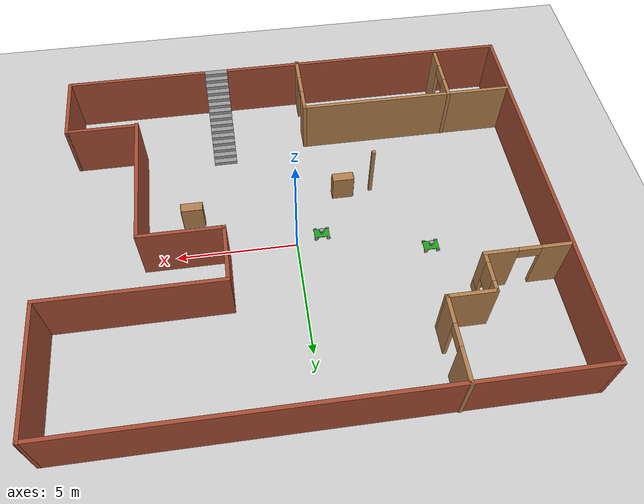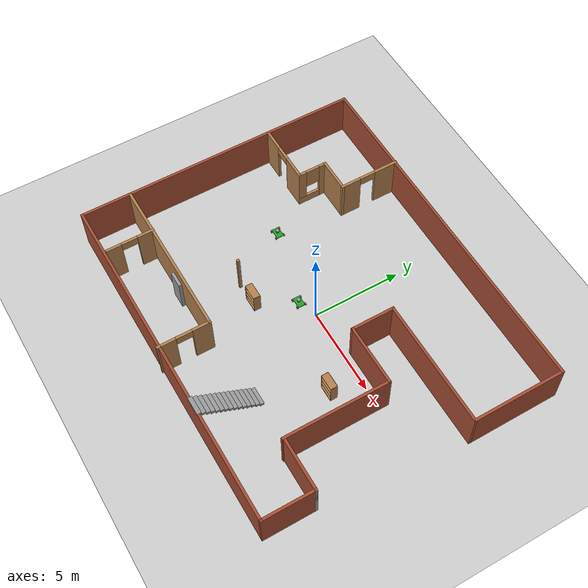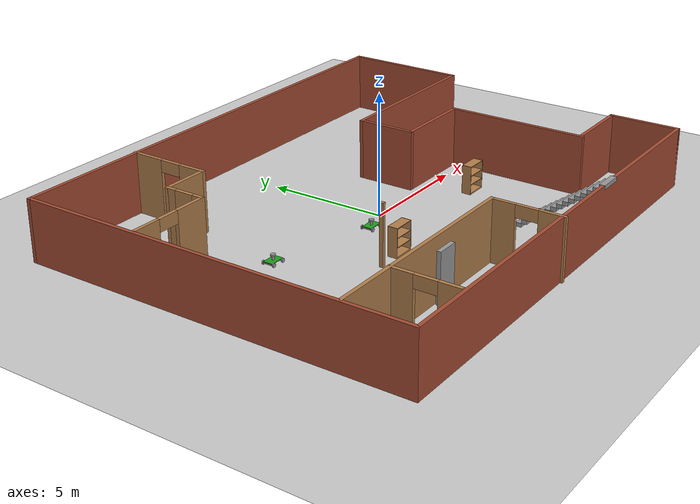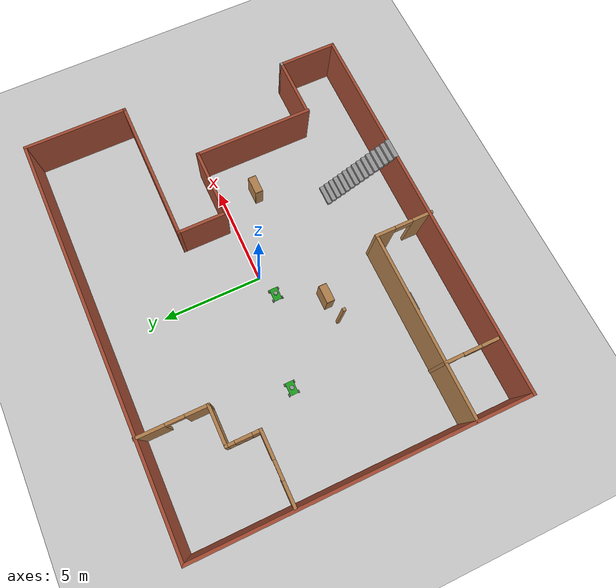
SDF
<sdf version="1.7">
 <world name="KoWorld">
  <light name="sun" type="directional">
   <pose>0 0 10 0 -0 0</pose>
   <diffuse>0.8 0.8 0.8 1</diffuse>
   <specular>0.2 0.2 0.2 1</specular>
   <attenuation>
    <range>1000</range>
    <constant>0.9</constant>
    <linear>0.01</linear>
    <quadratic>0.001</quadratic>
   </attenuation>
   <direction>-0.5 0.1 -0.9</direction>
   <spot><inner_angle>0</inner_angle><outer_angle>0</outer_angle><falloff>0</falloff></spot>
  </light>
  <model name="ground_plane">
   <static>1</static>
   <link name="link">
    <collision name="collision">
     <geometry><plane><normal>0 0 1</normal><size>100 100</size></plane></geometry>
     <surface>
      <contact><collide_bitmask>65535</collide_bitmask></contact>
      <friction><ode><mu>100</mu><mu2>50</mu2></ode></friction>
     </surface>
    </collision>
    <visual name="visual">
     <cast_shadows>0</cast_shadows>
     <geometry><plane><normal>0 0 1</normal><size>100 100</size></plane></geometry>
     <material>
      <script><uri>file://media/materials/scripts/gazebo.material</uri><name>Gazebo/Grey</name></script>
     </material>
    </visual>
   </link>
  </model>
  <gravity>0 0 -9.8</gravity>
  <magnetic_field>6e-06 2.3e-05 -4.2e-05</magnetic_field>
  <atmosphere type="adiabatic"/>
  <physics type="ode">
   <max_step_size>0.001</max_step_size>
   <real_time_factor>1</real_time_factor>
   <real_time_update_rate>1000</real_time_update_rate>
  </physics>
  <scene><ambient>0.4 0.4 0.4 1</ambient><background>0.7 0.7 0.7 1</background><shadows>1</shadows></scene>
  <spherical_coordinates>
   <surface_model>EARTH_WGS84</surface_model>
   <latitude_deg>0</latitude_deg>
   <longitude_deg>0</longitude_deg>
   <elevation>0</elevation>
   <heading_deg>0</heading_deg>
  </spherical_coordinates>
  <model name="KoLabHouse">
   <pose>-0.118384 -0.205877 0 0 -0 0</pose>
   <link name="Door_3">
    <collision name="Door_3_Collision">
     <geometry><box><size>0.9 0.17 2</size></box></geometry>
     <pose>0 0 1 0 -0 0</pose>
    </collision>
    <visual name="Door_3_Visual">
     <pose>0 0 1 0 -0 0</pose>
     <geometry><box><size>0.9 0.17 2</size></box></geometry>
     <material>
      <script><uri>file://media/materials/scripts/gazebo.material</uri><name>Gazebo/Grey</name></script>
     </material>
    </visual>
    <pose>-4.31656 -5.45643 0 0 -0 0</pose>
   </link>
   <link name="Stairs_0">
    <visual name="Stairs_0_Visual_0">
     <pose>2.76269 -4.71817 0.083333 0 -0 0</pose>
     <geometry><box><size>1 0.233333 0.166667</size></box></geometry>
     <material>
      <script><uri>file://media/materials/scripts/gazebo.material</uri><name>Gazebo/Grey</name></script>
      <ambient>1 1 1 1</ambient>
     </material>
     <meta><layer>0</layer></meta>
    </visual>
    <collision name="Stairs_0_Collision_0">
     <geometry><box><size>1 0.233333 0.166667</size></box></geometry>
     <pose>2.76269 -4.71817 0.083333 0 -0 0</pose>
    </collision>
    <visual name="Stairs_0_Visual_1">
     <pose>2.76269 -4.95151 0.25 0 -0 0</pose>
     <geometry><box><size>1 0.233333 0.166667</size></box></geometry>
     <material>
      <script><uri>file://media/materials/scripts/gazebo.material</uri><name>Gazebo/Grey</name></script>
      <ambient>1 1 1 1</ambient>
     </material>
     <meta><layer>0</layer></meta>
    </visual>
    <collision name="Stairs_0_Collision_1">
     <geometry><box><size>1 0.233333 0.166667</size></box></geometry>
     <pose>2.76269 -4.95151 0.25 0 -0 0</pose>
    </collision>
    <visual name="Stairs_0_Visual_2">
     <pose>2.76269 -5.18484 0.416667 0 -0 0</pose>
     <geometry><box><size>1 0.233333 0.166667</size></box></geometry>
     <material>
      <script><uri>file://media/materials/scripts/gazebo.material</uri><name>Gazebo/Grey</name></script>
      <ambient>1 1 1 1</ambient>
     </material>
     <meta><layer>0</layer></meta>
    </visual>
    <collision name="Stairs_0_Collision_2">
     <geometry><box><size>1 0.233333 0.166667</size></box></geometry>
     <pose>2.76269 -5.18484 0.416667 0 -0 0</pose>
    </collision>
    <visual name="Stairs_0_Visual_3">
     <pose>2.76269 -5.41817 0.583333 0 -0 0</pose>
     <geometry><box><size>1 0.233333 0.166667</size></box></geometry>
     <material>
      <script><uri>file://media/materials/scripts/gazebo.material</uri><name>Gazebo/Grey</name></script>
      <ambient>1 1 1 1</ambient>
     </material>
     <meta><layer>0</layer></meta>
    </visual>
    <collision name="Stairs_0_Collision_3">
     <geometry><box><size>1 0.233333 0.166667</size></box></geometry>
     <pose>2.76269 -5.41817 0.583333 0 -0 0</pose>
    </collision>
    <visual name="Stairs_0_Visual_4">
     <pose>2.76269 -5.65151 0.75 0 -0 0</pose>
     <geometry><box><size>1 0.233333 0.166667</size></box></geometry>
     <material>
      <script><uri>file://media/materials/scripts/gazebo.material</uri><name>Gazebo/Grey</name></script>
      <ambient>1 1 1 1</ambient>
     </material>
     <meta><layer>0</layer></meta>
    </visual>
    <collision name="Stairs_0_Collision_4">
     <geometry><box><size>1 0.233333 0.166667</size></box></geometry>
     <pose>2.76269 -5.65151 0.75 0 -0 0</pose>
    </collision>
    <visual name="Stairs_0_Visual_5">
     <pose>2.76269 -5.88484 0.916667 0 -0 0</pose>
     <geometry><box><size>1 0.233333 0.166667</size></box></geometry>
     <material>
      <script><uri>file://media/materials/scripts/gazebo.material</uri><name>Gazebo/Grey</name></script>
      <ambient>1 1 1 1</ambient>
     </material>
     <meta><layer>0</layer></meta>
    </visual>
    <collision name="Stairs_0_Collision_5">
     <geometry><box><size>1 0.233333 0.166667</size></box></geometry>
     <pose>2.76269 -5.88484 0.916667 0 -0 0</pose>
    </collision>
    <visual name="Stairs_0_Visual_6">
     <pose>2.76269 -6.11817 1.08333 0 -0 0</pose>
     <geometry><box><size>1 0.233333 0.166667</size></box></geometry>
     <material>
      <script><uri>file://media/materials/scripts/gazebo.material</uri><name>Gazebo/Grey</name></script>
      <ambient>1 1 1 1</ambient>
     </material>
     <meta><layer>0</layer></meta>
    </visual>
    <collision name="Stairs_0_Collision_6">
     <geometry><box><size>1 0.233333 0.166667</size></box></geometry>
     <pose>2.76269 -6.11817 1.08333 0 -0 0</pose>
    </collision>
    <visual name="Stairs_0_Visual_7">
     <pose>2.76269 -6.35151 1.25 0 -0 0</pose>
     <geometry><box><size>1 0.233333 0.166667</size></box></geometry>
     <material>
      <script><uri>file://media/materials/scripts/gazebo.material</uri><name>Gazebo/Grey</name></script>
      <ambient>1 1 1 1</ambient>
     </material>
     <meta><layer>0</layer></meta>
    </visual>
    <collision name="Stairs_0_Collision_7">
     <geometry><box><size>1 0.233333 0.166667</size></box></geometry>
     <pose>2.76269 -6.35151 1.25 0 -0 0</pose>
    </collision>
    <visual name="Stairs_0_Visual_8">
     <pose>2.76269 -6.58484 1.41667 0 -0 0</pose>
     <geometry><box><size>1 0.233333 0.166667</size></box></geometry>
     <material>
      <script><uri>file://media/materials/scripts/gazebo.material</uri><name>Gazebo/Grey</name></script>
      <ambient>1 1 1 1</ambient>
     </material>
     <meta><layer>0</layer></meta>
    </visual>
    <collision name="Stairs_0_Collision_8">
     <geometry><box><size>1 0.233333 0.166667</size></box></geometry>
     <pose>2.76269 -6.58484 1.41667 0 -0 0</pose>
    </collision>
    <visual name="Stairs_0_Visual_9">
     <pose>2.76269 -6.81817 1.58333 0 -0 0</pose>
     <geometry><box><size>1 0.233333 0.166667</size></box></geometry>
     <material>
      <script><uri>file://media/materials/scripts/gazebo.material</uri><name>Gazebo/Grey</name></script>
      <ambient>1 1 1 1</ambient>
     </material>
     <meta><layer>0</layer></meta>
    </visual>
    <collision name="Stairs_0_Collision_9">
     <geometry><box><size>1 0.233333 0.166667</size></box></geometry>
     <pose>2.76269 -6.81817 1.58333 0 -0 0</pose>
    </collision>
    <visual name="Stairs_0_Visual_10">
     <pose>2.76269 -7.05151 1.75 0 -0 0</pose>
     <geometry><box><size>1 0.233333 0.166667</size></box></geometry>
     <material>
      <script><uri>file://media/materials/scripts/gazebo.material</uri><name>Gazebo/Grey</name></script>
      <ambient>1 1 1 1</ambient>
     </material>
     <meta><layer>0</layer></meta>
    </visual>
    <collision name="Stairs_0_Collision_10">
     <geometry><box><size>1 0.233333 0.166667</size></box></geometry>
     <pose>2.76269 -7.05151 1.75 0 -0 0</pose>
    </collision>
    <visual name="Stairs_0_Visual_11">
     <pose>2.76269 -7.28484 1.91667 0 -0 0</pose>
     <geometry><box><size>1 0.233333 0.166667</size></box></geometry>
     <material>
      <script><uri>file://media/materials/scripts/gazebo.material</uri><name>Gazebo/Grey</name></script>
      <ambient>1 1 1 1</ambient>
     </material>
     <meta><layer>0</layer></meta>
    </visual>
    <collision name="Stairs_0_Collision_11">
     <geometry><box><size>1 0.233333 0.166667</size></box></geometry>
     <pose>2.76269 -7.28484 1.91667 0 -0 0</pose>
    </collision>
    <visual name="Stairs_0_Visual_12">
     <pose>2.76269 -7.51817 2.08333 0 -0 0</pose>
     <geometry><box><size>1 0.233333 0.166667</size></box></geometry>
     <material>
      <script><uri>file://media/materials/scripts/gazebo.material</uri><name>Gazebo/Grey</name></script>
      <ambient>1 1 1 1</ambient>
     </material>
     <meta><layer>0</layer></meta>
    </visual>
    <collision name="Stairs_0_Collision_12">
     <geometry><box><size>1 0.233333 0.166667</size></box></geometry>
     <pose>2.76269 -7.51817 2.08333 0 -0 0</pose>
    </collision>
    <visual name="Stairs_0_Visual_13">
     <pose>2.76269 -7.75151 2.25 0 -0 0</pose>
     <geometry><box><size>1 0.233333 0.166667</size></box></geometry>
     <material>
      <script><uri>file://media/materials/scripts/gazebo.material</uri><name>Gazebo/Grey</name></script>
      <ambient>1 1 1 1</ambient>
     </material>
     <meta><layer>0</layer></meta>
    </visual>
    <collision name="Stairs_0_Collision_13">
     <geometry><box><size>1 0.233333 0.166667</size></box></geometry>
     <pose>2.76269 -7.75151 2.25 0 -0 0</pose>
    </collision>
    <visual name="Stairs_0_Visual_14">
     <pose>2.76269 -7.98484 2.41667 0 -0 0</pose>
     <geometry><box><size>1 0.233333 0.166667</size></box></geometry>
     <material>
      <script><uri>file://media/materials/scripts/gazebo.material</uri><name>Gazebo/Grey</name></script>
      <ambient>1 1 1 1</ambient>
     </material>
     <meta><layer>0</layer></meta>
    </visual>
    <collision name="Stairs_0_Collision_14">
     <geometry><box><size>1 0.233333 0.166667</size></box></geometry>
     <pose>2.76269 -7.98484 2.41667 0 -0 0</pose>
    </collision>
   </link>
   <link name="Wall_10">
    <collision name="Wall_10_Collision">
     <geometry><box><size>3.5 0.15 2.5</size></box></geometry>
     <pose>0 0 1.25 0 -0 0</pose>
    </collision>
    <visual name="Wall_10_Visual">
     <pose>0 0 1.25 0 -0 0</pose>
     <geometry><box><size>3.5 0.15 2.5</size></box></geometry>
     <material>
      <script><uri>file://media/materials/scripts/gazebo.material</uri><name>Gazebo/Bricks</name></script>
      <ambient>1 1 1 1</ambient>
     </material>
     <meta><layer>0</layer></meta>
    </visual>
    <pose>4.65642 0.624103 0 0 -0 0</pose>
   </link>
   <link name="Wall_11">
    <collision name="Wall_11_Collision">
     <geometry><box><size>6 0.15 2.5</size></box></geometry>
     <pose>0 0 1.25 0 -0 0</pose>
    </collision>
    <visual name="Wall_11_Visual">
     <pose>0 0 1.25 0 -0 0</pose>
     <geometry><box><size>6 0.15 2.5</size></box></geometry>
     <material>
      <script><uri>file://media/materials/scripts/gazebo.material</uri><name>Gazebo/Bricks</name></script>
      <ambient>1 1 1 1</ambient>
     </material>
     <meta><layer>0</layer></meta>
    </visual>
    <pose>6.33142 -2.3009 0 0 -0 -1.5708</pose>
   </link>
   <link name="Wall_29">
    <collision name="Wall_29_Collision">
     <geometry><box><size>16.25 0.15 2.5</size></box></geometry>
     <pose>0 0 1.25 0 -0 0</pose>
    </collision>
    <visual name="Wall_29_Visual">
     <pose>0 0 1.25 0 -0 0</pose>
     <geometry><box><size>16.25 0.15 2.5</size></box></geometry>
     <material>
      <script><uri>file://media/materials/scripts/gazebo.material</uri><name>Gazebo/Bricks</name></script>
      <ambient>1 1 1 1</ambient>
     </material>
     <meta><layer>0</layer></meta>
    </visual>
    <pose>-10.0814 0.024103 0 0 -0 -1.5708</pose>
   </link>
   <link name="Wall_30">
    <collision name="Wall_30_Collision">
     <geometry><box><size>19.5 0.15 2.5</size></box></geometry>
     <pose>0 0 1.25 0 -0 0</pose>
    </collision>
    <visual name="Wall_30_Visual">
     <pose>0 0 1.25 0 -0 0</pose>
     <geometry><box><size>19.5 0.15 2.5</size></box></geometry>
     <material>
      <script><uri>file://media/materials/scripts/gazebo.material</uri><name>Gazebo/Bricks</name></script>
      <ambient>1 1 1 1</ambient>
     </material>
     <meta><layer>0</layer></meta>
    </visual>
    <pose>-0.406424 -8.0259 0 0 -0 0</pose>
   </link>
   <link name="Wall_31">
    <collision name="Wall_31_Collision">
     <geometry><box><size>3 0.15 2.5</size></box></geometry>
     <pose>0 0 1.25 0 -0 0</pose>
    </collision>
    <visual name="Wall_31_Visual">
     <pose>0 0 1.25 0 -0 0</pose>
     <geometry><box><size>3 0.15 2.5</size></box></geometry>
     <material>
      <script><uri>file://media/materials/scripts/gazebo.material</uri><name>Gazebo/Bricks</name></script>
      <ambient>1 1 1 1</ambient>
     </material>
     <meta><layer>0</layer></meta>
    </visual>
    <pose>9.26858 -6.6009 0 0 -0 1.5708</pose>
   </link>
   <link name="Wall_32">
    <collision name="Wall_32_Collision">
     <geometry><box><size>0.15 0.15 2.5</size></box></geometry>
     <pose>0 0 1.25 0 -0 0</pose>
    </collision>
    <visual name="Wall_32_Visual">
     <pose>0 0 1.25 0 -0 0</pose>
     <geometry><box><size>0.15 0.15 2.5</size></box></geometry>
     <material>
      <script><uri>file://media/materials/scripts/gazebo.material</uri><name>Gazebo/Grey</name></script>
      <ambient>1 1 1 1</ambient>
     </material>
     <meta><layer>0</layer></meta>
    </visual>
    <pose>9.26858 -5.1759 0 0 -0 0</pose>
   </link>
   <link name="Wall_37">
    <collision name="Wall_37_Collision">
     <geometry><box><size>0.15 0.15 2.5</size></box></geometry>
     <pose>0 0 1.25 0 -0 0</pose>
    </collision>
    <visual name="Wall_37_Visual">
     <pose>0 0 1.25 0 -0 0</pose>
     <geometry><box><size>0.15 0.15 2.5</size></box></geometry>
     <material>
      <script><uri>file://media/materials/scripts/gazebo.material</uri><name>Gazebo/Wood</name></script>
      <ambient>1 1 1 1</ambient>
     </material>
     <meta><layer>0</layer></meta>
    </visual>
    <pose>-3.43142 -2.3259 0 0 -0 0</pose>
   </link>
   <link name="Wall_44">
    <collision name="Wall_44_Collision">
     <geometry><box><size>3 0.15 2.5</size></box></geometry>
     <pose>0 0 1.25 0 -0 0</pose>
    </collision>
    <visual name="Wall_44_Visual">
     <pose>0 0 1.25 0 -0 0</pose>
     <geometry><box><size>3 0.15 2.5</size></box></geometry>
     <material>
      <script><uri>file://media/materials/scripts/gazebo.material</uri><name>Gazebo/Bricks</name></script>
      <ambient>1 1 1 1</ambient>
     </material>
     <meta><layer>0</layer></meta>
    </visual>
    <pose>7.84358 -5.1759 0 0 -0 3.14159</pose>
   </link>
   <link name="Wall_49">
    <pose>-4.77775 6.43485 0 0 -0 -1.5708</pose>
    <visual name="Wall_49_Visual_0">
     <pose>-1.03616 0 1.25 0 -0 0</pose>
     <geometry><box><size>1.42767 0.15 2.5</size></box></geometry>
     <material>
      <script><uri>file://media/materials/scripts/gazebo.material</uri><name>Gazebo/Wood</name></script>
      <ambient>1 1 1 1</ambient>
     </material>
     <meta><layer>0</layer></meta>
    </visual>
    <collision name="Wall_49_Collision_0">
     <geometry><box><size>1.42767 0.15 2.5</size></box></geometry>
     <pose>-1.03616 0 1.25 0 -0 0</pose>
    </collision>
    <visual name="Wall_49_Visual_1">
     <pose>1.16384 0 1.25 0 -0 0</pose>
     <geometry><box><size>1.17233 0.15 2.5</size></box></geometry>
     <material>
      <script><uri>file://media/materials/scripts/gazebo.material</uri><name>Gazebo/Wood</name></script>
      <ambient>1 1 1 1</ambient>
     </material>
     <meta><layer>0</layer></meta>
    </visual>
    <collision name="Wall_49_Collision_1">
     <geometry><box><size>1.17233 0.15 2.5</size></box></geometry>
     <pose>1.16384 0 1.25 0 -0 0</pose>
    </collision>
    <visual name="Wall_49_Visual_2">
     <pose>0.127674 0 2.25 0 -0 0</pose>
     <geometry><box><size>0.9 0.15 0.5</size></box></geometry>
     <material>
      <script><uri>file://media/materials/scripts/gazebo.material</uri><name>Gazebo/Wood</name></script>
      <ambient>1 1 1 1</ambient>
     </material>
     <meta><layer>0</layer></meta>
    </visual>
    <collision name="Wall_49_Collision_2">
     <geometry><box><size>0.9 0.15 0.5</size></box></geometry>
     <pose>0.127674 0 2.25 0 -0 0</pose>
    </collision>
   </link>
   <link name="Wall_50">
    <collision name="Wall_50_Collision">
     <geometry><box><size>2 0.15 2.5</size></box></geometry>
     <pose>0 0 1.25 0 -0 0</pose>
    </collision>
    <visual name="Wall_50_Visual">
     <pose>0 0 1.25 0 -0 0</pose>
     <geometry><box><size>2 0.15 2.5</size></box></geometry>
     <material>
      <script><uri>file://media/materials/scripts/gazebo.material</uri><name>Gazebo/Wood</name></script>
      <ambient>1 1 1 1</ambient>
     </material>
     <meta><layer>0</layer></meta>
    </visual>
    <pose>-5.70275 4.75985 0 0 -0 3.14159</pose>
   </link>
   <link name="Wall_51">
    <pose>-6.62775 3.95985 0 0 -0 -1.5708</pose>
    <visual name="Wall_51_Visual_0">
     <pose>-0.639953 0 1.25 0 -0 0</pose>
     <geometry><box><size>0.470095 0.15 2.5</size></box></geometry>
     <material>
      <script><uri>file://media/materials/scripts/gazebo.material</uri><name>Gazebo/Wood</name></script>
      <ambient>1 1 1 1</ambient>
     </material>
     <meta><layer>0</layer></meta>
    </visual>
    <collision name="Wall_51_Collision_0">
     <geometry><box><size>0.470095 0.15 2.5</size></box></geometry>
     <pose>-0.639953 0 1.25 0 -0 0</pose>
    </collision>
    <visual name="Wall_51_Visual_1">
     <pose>0.235047 0 0.25 0 -0 0</pose>
     <geometry><box><size>1.27991 0.15 0.5</size></box></geometry>
     <material>
      <script><uri>file://media/materials/scripts/gazebo.material</uri><name>Gazebo/Wood</name></script>
      <ambient>1 1 1 1</ambient>
     </material>
     <meta><layer>0</layer></meta>
    </visual>
    <collision name="Wall_51_Collision_1">
     <geometry><box><size>1.27991 0.15 0.5</size></box></geometry>
     <pose>0.235047 0 0.25 0 -0 0</pose>
    </collision>
    <visual name="Wall_51_Visual_2">
     <pose>0.635047 0 1.5 0 -0 0</pose>
     <geometry><box><size>0.479905 0.15 2</size></box></geometry>
     <material>
      <script><uri>file://media/materials/scripts/gazebo.material</uri><name>Gazebo/Wood</name></script>
      <ambient>1 1 1 1</ambient>
     </material>
     <meta><layer>0</layer></meta>
    </visual>
    <collision name="Wall_51_Collision_2">
     <geometry><box><size>0.479905 0.15 2</size></box></geometry>
     <pose>0.635047 0 1.5 0 -0 0</pose>
    </collision>
    <visual name="Wall_51_Visual_3">
     <pose>-0.004905 0 1.9 0 -0 0</pose>
     <geometry><box><size>0.8 0.15 1.2</size></box></geometry>
     <material>
      <script><uri>file://media/materials/scripts/gazebo.material</uri><name>Gazebo/Wood</name></script>
      <ambient>1 1 1 1</ambient>
     </material>
     <meta><layer>0</layer></meta>
    </visual>
    <collision name="Wall_51_Collision_3">
     <geometry><box><size>0.8 0.15 1.2</size></box></geometry>
     <pose>-0.004905 0 1.9 0 -0 0</pose>
    </collision>
   </link>
   <link name="Wall_52">
    <pose>-8.30275 3.15985 0 0 -0 3.14159</pose>
    <visual name="Wall_52_Visual_0">
     <pose>-1.0566 0 1.25 0 -0 0</pose>
     <geometry><box><size>1.38679 0.15 2.5</size></box></geometry>
     <material>
      <script><uri>file://media/materials/scripts/gazebo.material</uri><name>Gazebo/Wood</name></script>
      <ambient>1 1 1 1</ambient>
     </material>
     <meta><layer>0</layer></meta>
    </visual>
    <collision name="Wall_52_Collision_0">
     <geometry><box><size>1.38679 0.15 2.5</size></box></geometry>
     <pose>-1.0566 0 1.25 0 -0 0</pose>
    </collision>
    <visual name="Wall_52_Visual_1">
     <pose>1.1434 0 1.25 0 -0 0</pose>
     <geometry><box><size>1.21321 0.15 2.5</size></box></geometry>
     <material>
      <script><uri>file://media/materials/scripts/gazebo.material</uri><name>Gazebo/Wood</name></script>
      <ambient>1 1 1 1</ambient>
     </material>
     <meta><layer>0</layer></meta>
    </visual>
    <collision name="Wall_52_Collision_1">
     <geometry><box><size>1.21321 0.15 2.5</size></box></geometry>
     <pose>1.1434 0 1.25 0 -0 0</pose>
    </collision>
    <visual name="Wall_52_Visual_2">
     <pose>0.086793 0 2.25 0 -0 0</pose>
     <geometry><box><size>0.9 0.15 0.5</size></box></geometry>
     <material>
      <script><uri>file://media/materials/scripts/gazebo.material</uri><name>Gazebo/Wood</name></script>
      <ambient>1 1 1 1</ambient>
     </material>
     <meta><layer>0</layer></meta>
    </visual>
    <collision name="Wall_52_Collision_2">
     <geometry><box><size>0.9 0.15 0.5</size></box></geometry>
     <pose>0.086793 0 2.25 0 -0 0</pose>
    </collision>
   </link>
   <link name="Wall_55">
    <collision name="Wall_55_Collision">
     <geometry><box><size>9.25 0.15 2.5</size></box></geometry>
     <pose>0 0 1.25 0 -0 0</pose>
    </collision>
    <visual name="Wall_55_Visual">
     <pose>0 0 1.25 0 -0 0</pose>
     <geometry><box><size>9.25 0.15 2.5</size></box></geometry>
     <material>
      <script><uri>file://media/materials/scripts/gazebo.material</uri><name>Gazebo/Wood</name></script>
      <ambient>1 1 1 1</ambient>
     </material>
     <meta><layer>0</layer></meta>
    </visual>
    <pose>-5.48373 -5.25985 0 0 -0 0</pose>
   </link>
   <link name="Wall_58">
    <pose>-0.933727 -6.68485 0 0 -0 -1.5708</pose>
    <visual name="Wall_58_Visual_0">
     <pose>-0.978932 0 1.25 0 -0 0</pose>
     <geometry><box><size>1.04214 0.15 2.5</size></box></geometry>
     <material>
      <script><uri>file://media/materials/scripts/gazebo.material</uri><name>Gazebo/Wood</name></script>
      <ambient>1 1 1 1</ambient>
     </material>
     <meta><layer>0</layer></meta>
    </visual>
    <collision name="Wall_58_Collision_0">
     <geometry><box><size>1.04214 0.15 2.5</size></box></geometry>
     <pose>-0.978932 0 1.25 0 -0 0</pose>
    </collision>
    <visual name="Wall_58_Visual_1">
     <pose>0.971068 0 1.25 0 -0 0</pose>
     <geometry><box><size>1.05787 0.15 2.5</size></box></geometry>
     <material>
      <script><uri>file://media/materials/scripts/gazebo.material</uri><name>Gazebo/Wood</name></script>
      <ambient>1 1 1 1</ambient>
     </material>
     <meta><layer>0</layer></meta>
    </visual>
    <collision name="Wall_58_Collision_1">
     <geometry><box><size>1.05787 0.15 2.5</size></box></geometry>
     <pose>0.971068 0 1.25 0 -0 0</pose>
    </collision>
    <visual name="Wall_58_Visual_2">
     <pose>-0.007865 0 2.25 0 -0 0</pose>
     <geometry><box><size>0.9 0.15 0.5</size></box></geometry>
     <material>
      <script><uri>file://media/materials/scripts/gazebo.material</uri><name>Gazebo/Wood</name></script>
      <ambient>1 1 1 1</ambient>
     </material>
     <meta><layer>0</layer></meta>
    </visual>
    <collision name="Wall_58_Collision_2">
     <geometry><box><size>0.9 0.15 0.5</size></box></geometry>
     <pose>-0.007865 0 2.25 0 -0 0</pose>
    </collision>
   </link>
   <link name="Wall_6">
    <collision name="Wall_6_Collision">
     <geometry><box><size>20.3128 0.15 2.5</size></box></geometry>
     <pose>0 0 1.25 0 -0 0</pose>
    </collision>
    <visual name="Wall_6_Visual">
     <pose>0 0 1.25 0 -0 0</pose>
     <geometry><box><size>20.3128 0.15 2.5</size></box></geometry>
     <material>
      <script><uri>file://media/materials/scripts/gazebo.material</uri><name>Gazebo/Bricks</name></script>
      <ambient>1 1 1 1</ambient>
     </material>
     <meta><layer>0</layer></meta>
    </visual>
    <pose>0 8.0741 0 0 -0 0</pose>
   </link>
   <link name="Wall_60">
    <pose>-7.36477 -6.54082 0 0 -0 -1.5708</pose>
    <visual name="Wall_60_Visual_0">
     <pose>-0.8851 0 1.25 0 -0 0</pose>
     <geometry><box><size>0.9798 0.15 2.5</size></box></geometry>
     <material>
      <script><uri>file://media/materials/scripts/gazebo.material</uri><name>Gazebo/Wood</name></script>
      <ambient>1 1 1 1</ambient>
     </material>
     <meta><layer>0</layer></meta>
    </visual>
    <collision name="Wall_60_Collision_0">
     <geometry><box><size>0.9798 0.15 2.5</size></box></geometry>
     <pose>-0.8851 0 1.25 0 -0 0</pose>
    </collision>
    <visual name="Wall_60_Visual_1">
     <pose>0.9399 0 1.25 0 -0 0</pose>
     <geometry><box><size>0.8702 0.15 2.5</size></box></geometry>
     <material>
      <script><uri>file://media/materials/scripts/gazebo.material</uri><name>Gazebo/Wood</name></script>
      <ambient>1 1 1 1</ambient>
     </material>
     <meta><layer>0</layer></meta>
    </visual>
    <collision name="Wall_60_Collision_1">
     <geometry><box><size>0.8702 0.15 2.5</size></box></geometry>
     <pose>0.9399 0 1.25 0 -0 0</pose>
    </collision>
    <visual name="Wall_60_Visual_2">
     <pose>0.0548 0 2.25 0 -0 0</pose>
     <geometry><box><size>0.9 0.15 0.5</size></box></geometry>
     <material>
      <script><uri>file://media/materials/scripts/gazebo.material</uri><name>Gazebo/Wood</name></script>
      <ambient>1 1 1 1</ambient>
     </material>
     <meta><layer>0</layer></meta>
    </visual>
    <collision name="Wall_60_Collision_2">
     <geometry><box><size>0.9 0.15 0.5</size></box></geometry>
     <pose>0.0548 0 2.25 0 -0 0</pose>
    </collision>
   </link>
   <link name="Wall_7">
    <collision name="Wall_7_Collision">
     <geometry><box><size>5.25 0.15 2.5</size></box></geometry>
     <pose>0 0 1.25 0 -0 0</pose>
    </collision>
    <visual name="Wall_7_Visual">
     <pose>0 0 1.25 0 -0 0</pose>
     <geometry><box><size>5.25 0.15 2.5</size></box></geometry>
     <material>
      <script><uri>file://media/materials/scripts/gazebo.material</uri><name>Gazebo/Bricks</name></script>
      <ambient>1 1 1 1</ambient>
     </material>
     <meta><layer>0</layer></meta>
    </visual>
    <pose>10.0814 5.5241 0 0 -0 -1.5708</pose>
   </link>
   <link name="Wall_8">
    <collision name="Wall_8_Collision">
     <geometry><box><size>7.25 0.15 2.5</size></box></geometry>
     <pose>0 0 1.25 0 -0 0</pose>
    </collision>
    <visual name="Wall_8_Visual">
     <pose>0 0 1.25 0 -0 0</pose>
     <geometry><box><size>7.25 0.15 2.5</size></box></geometry>
     <material>
      <script><uri>file://media/materials/scripts/gazebo.material</uri><name>Gazebo/Bricks</name></script>
      <ambient>1 1 1 1</ambient>
     </material>
     <meta><layer>0</layer></meta>
    </visual>
    <pose>6.53142 2.9741 0 0 -0 3.14159</pose>
   </link>
   <link name="Wall_9">
    <collision name="Wall_9_Collision">
     <geometry><box><size>2.5 0.15 2.5</size></box></geometry>
     <pose>0 0 1.25 0 -0 0</pose>
    </collision>
    <visual name="Wall_9_Visual">
     <pose>0 0 1.25 0 -0 0</pose>
     <geometry><box><size>2.5 0.15 2.5</size></box></geometry>
     <material>
      <script><uri>file://media/materials/scripts/gazebo.material</uri><name>Gazebo/Bricks</name></script>
      <ambient>1 1 1 1</ambient>
     </material>
     <meta><layer>0</layer></meta>
    </visual>
    <pose>2.98142 1.7991 0 0 -0 -1.5708</pose>
   </link>
   <static>1</static>
  </model>
  <model name="Akkobot">
   <link name="link_1">
    <inertial>
     <mass>1</mass>
     <inertia>
      <ixx>0.166667</ixx>
      <ixy>0</ixy>
      <ixz>0</ixz>
      <iyy>0.166667</iyy>
      <iyz>0</iyz>
      <izz>0.166667</izz>
     </inertia>
    </inertial>
    <pose>0.01 1e-06 -0.194167 0 -0 0</pose>
    <visual name="visual">
     <geometry><box><size>0.63 0.4 0.03</size></box></geometry>
     <material>
      <lighting>1</lighting>
      <script><uri>file://media/materials/scripts/gazebo.material</uri><name>Gazebo/Grey</name></script>
      <shader type="pixel"><normal_map>__default__</normal_map></shader>
      <ambient>0.3 0.3 0.3 1</ambient>
      <diffuse>0.11 0.63 0.11 1</diffuse>
      <specular>0.01 0.01 0.01 1</specular>
      <emissive>0 0 0 1</emissive>
     </material>
    </visual>
    <visual name="ModelPreview_0::link_1::visual_1">
     <pose>0 0 0.098 0 -0 0</pose>
     <geometry><cylinder><radius>0.05</radius><length>0.17</length></cylinder></geometry>
     <material>
      <lighting>1</lighting>
      <script><uri>file://media/materials/scripts/gazebo.material</uri><name>Gazebo/Grey</name></script>
      <shader type="pixel"><normal_map>__default__</normal_map></shader>
      <ambient>0.3 0.3 0.3 1</ambient>
      <diffuse>0.7 0.5 0.7 1</diffuse>
      <specular>0.01 0.01 0.01 1</specular>
      <emissive>0 0 0 1</emissive>
     </material>
    </visual>
    <visual name="ModelPreview_0::link_1::visual_3">
     <pose>0 0 0.21 0 -0 0</pose>
     <geometry><cylinder><radius>0.1</radius><length>0.06</length></cylinder></geometry>
     <material>
      <lighting>1</lighting>
      <script><uri>file://media/materials/scripts/gazebo.material</uri><name>Gazebo/Grey</name></script>
      <shader type="pixel"><normal_map>__default__</normal_map></shader>
      <ambient>0.3 0.3 0.3 1</ambient>
      <diffuse>0.18 0.18 0.18 1</diffuse>
      <specular>0.01 0.01 0.01 1</specular>
      <emissive>0 0 0 1</emissive>
     </material>
    </visual>
    <collision name="collision">
     <geometry><box><size>0.65 0.4 0.03</size></box></geometry>
     <surface>
      <friction>
       <ode><mu>1</mu><mu2>1</mu2><fdir1>0 0 0</fdir1><slip1>0</slip1><slip2>0</slip2></ode>
       <torsional>
        <coefficient>1</coefficient>
        <patch_radius>0</patch_radius>
        <surface_radius>0</surface_radius>
        <use_patch_radius>1</use_patch_radius>
        <ode><slip>0</slip></ode>
       </torsional>
      </friction>
      <bounce><restitution_coefficient>0</restitution_coefficient><threshold>1e+06</threshold></bounce>
      <contact>
       <collide_without_contact>0</collide_without_contact>
       <collide_without_contact_bitmask>1</collide_without_contact_bitmask>
       <collide_bitmask>1</collide_bitmask>
       <ode>
        <soft_cfm>0</soft_cfm>
        <soft_erp>0.2</soft_erp>
        <kp>1e+13</kp>
        <kd>1</kd>
        <max_vel>0.01</max_vel>
        <min_depth>0</min_depth>
       </ode>
       <bullet>
        <split_impulse>1</split_impulse>
        <split_impulse_penetration_threshold>-0.01</split_impulse_penetration_threshold>
        <soft_cfm>0</soft_cfm>
        <soft_erp>0.2</soft_erp>
        <kp>1e+13</kp>
        <kd>1</kd>
       </bullet>
      </contact>
     </surface>
    </collision>
   </link>
   <link name="link_2">
    <inertial>
     <mass>1</mass>
     <inertia><ixx>0.145833</ixx><ixy>0</ixy><ixz>0</ixz><iyy>0.145833</iyy><iyz>0</iyz><izz>0.125</izz></inertia>
    </inertial>
    <pose>-0.25 1e-06 -0.244167 1.5707 -0 0</pose>
    <visual name="ModelPreview_0::link_2::visual_1">
     <pose>0 0 0.24 0 -0 0</pose>
     <geometry><cylinder><radius>0.08</radius><length>0.05</length></cylinder></geometry>
     <material>
      <lighting>1</lighting>
      <script><uri>file://media/materials/scripts/gazebo.material</uri><name>Gazebo/Grey</name></script>
      <shader type="pixel"><normal_map>__default__</normal_map></shader>
      <ambient>0.3 0.3 0.3 1</ambient>
      <diffuse>0.18 0.18 0.18 1</diffuse>
      <specular>0.01 0.01 0.01 1</specular>
      <emissive>0 0 0 1</emissive>
     </material>
    </visual>
    <visual name="ModelPreview_0::link_2::visual_2">
     <pose>0 0 -0.24 0 -0 0</pose>
     <geometry><cylinder><radius>0.08</radius><length>0.05</length></cylinder></geometry>
     <material>
      <lighting>1</lighting>
      <script><uri>file://media/materials/scripts/gazebo.material</uri><name>Gazebo/Grey</name></script>
      <shader type="pixel"><normal_map>__default__</normal_map></shader>
      <ambient>0.3 0.3 0.3 1</ambient>
      <diffuse>0.18 0.18 0.18 1</diffuse>
      <specular>0.01 0.01 0.01 1</specular>
      <emissive>0 0 0 1</emissive>
     </material>
    </visual>
    <visual name="visual">
     <geometry><cylinder><radius>0.04</radius><length>0.44</length></cylinder></geometry>
     <material>
      <lighting>1</lighting>
      <script><uri>file://media/materials/scripts/gazebo.material</uri><name>Gazebo/Grey</name></script>
      <shader type="pixel"><normal_map>__default__</normal_map></shader>
      <ambient>0.3 0.3 0.3 1</ambient>
      <diffuse>0.07 0.03 0.07 1</diffuse>
      <specular>0.01 0.01 0.01 1</specular>
      <emissive>0 0 0 1</emissive>
     </material>
    </visual>
    <collision name="collision">
     <geometry><cylinder><radius>0.04</radius><length>0.44</length></cylinder></geometry>
     <surface>
      <friction>
       <ode><mu>1</mu><mu2>1</mu2><fdir1>0 0 0</fdir1><slip1>0</slip1><slip2>0</slip2></ode>
       <torsional>
        <coefficient>1</coefficient>
        <patch_radius>0</patch_radius>
        <surface_radius>0</surface_radius>
        <use_patch_radius>1</use_patch_radius>
        <ode><slip>0</slip></ode>
       </torsional>
      </friction>
      <bounce><restitution_coefficient>0</restitution_coefficient><threshold>1e+06</threshold></bounce>
      <contact>
       <collide_without_contact>0</collide_without_contact>
       <collide_without_contact_bitmask>1</collide_without_contact_bitmask>
       <collide_bitmask>1</collide_bitmask>
       <ode>
        <soft_cfm>0</soft_cfm>
        <soft_erp>0.2</soft_erp>
        <kp>1e+13</kp>
        <kd>1</kd>
        <max_vel>0.01</max_vel>
        <min_depth>0</min_depth>
       </ode>
       <bullet>
        <split_impulse>1</split_impulse>
        <split_impulse_penetration_threshold>-0.01</split_impulse_penetration_threshold>
        <soft_cfm>0</soft_cfm>
        <soft_erp>0.2</soft_erp>
        <kp>1e+13</kp>
        <kd>1</kd>
       </bullet>
      </contact>
     </surface>
    </collision>
   </link>
   <link name="link_2_clone">
    <inertial>
     <mass>1</mass>
     <inertia><ixx>0.145833</ixx><ixy>0</ixy><ixz>0</ixz><iyy>0.145833</iyy><iyz>0</iyz><izz>0.125</izz></inertia>
    </inertial>
    <pose>0.26 1e-06 -0.244167 1.5707 -0 0</pose>
    <visual name="visual_1">
     <pose>0 0 0.24 0 -0 0</pose>
     <geometry><cylinder><radius>0.08</radius><length>0.05</length></cylinder></geometry>
     <material>
      <lighting>1</lighting>
      <script><uri>file://media/materials/scripts/gazebo.material</uri><name>Gazebo/Grey</name></script>
      <shader type="pixel"><normal_map>__default__</normal_map></shader>
      <ambient>0.3 0.3 0.3 1</ambient>
      <diffuse>0.18 0.18 0.18 1</diffuse>
      <specular>0.01 0.01 0.01 1</specular>
      <emissive>0 0 0 1</emissive>
     </material>
    </visual>
    <visual name="visual_2">
     <pose>0 0 -0.24 0 -0 0</pose>
     <geometry><cylinder><radius>0.08</radius><length>0.05</length></cylinder></geometry>
     <material>
      <lighting>1</lighting>
      <script><uri>file://media/materials/scripts/gazebo.material</uri><name>Gazebo/Grey</name></script>
      <shader type="pixel"><normal_map>__default__</normal_map></shader>
      <ambient>0.3 0.3 0.3 1</ambient>
      <diffuse>0.18 0.18 0.18 1</diffuse>
      <specular>0.01 0.01 0.01 1</specular>
      <emissive>0 0 0 1</emissive>
     </material>
    </visual>
    <visual name="visual">
     <geometry><cylinder><radius>0.04</radius><length>0.44</length></cylinder></geometry>
     <material>
      <lighting>1</lighting>
      <script><uri>file://media/materials/scripts/gazebo.material</uri><name>Gazebo/Grey</name></script>
      <shader type="pixel"><normal_map>__default__</normal_map></shader>
      <ambient>0.3 0.3 0.3 1</ambient>
      <diffuse>0.07 0.03 0.07 1</diffuse>
      <specular>0.01 0.01 0.01 1</specular>
      <emissive>0 0 0 1</emissive>
     </material>
    </visual>
    <collision name="collision">
     <geometry><cylinder><radius>0.04</radius><length>0.44</length></cylinder></geometry>
     <surface>
      <friction>
       <ode><mu>1</mu><mu2>1</mu2><fdir1>0 0 0</fdir1><slip1>0</slip1><slip2>0</slip2></ode>
       <torsional>
        <coefficient>1</coefficient>
        <patch_radius>0</patch_radius>
        <surface_radius>0</surface_radius>
        <use_patch_radius>1</use_patch_radius>
        <ode><slip>0</slip></ode>
       </torsional>
      </friction>
      <bounce><restitution_coefficient>0</restitution_coefficient><threshold>1e+06</threshold></bounce>
      <contact>
       <collide_without_contact>0</collide_without_contact>
       <collide_without_contact_bitmask>1</collide_without_contact_bitmask>
       <collide_bitmask>1</collide_bitmask>
       <ode>
        <soft_cfm>0</soft_cfm>
        <soft_erp>0.2</soft_erp>
        <kp>1e+13</kp>
        <kd>1</kd>
        <max_vel>0.01</max_vel>
        <min_depth>0</min_depth>
       </ode>
       <bullet>
        <split_impulse>1</split_impulse>
        <split_impulse_penetration_threshold>-0.01</split_impulse_penetration_threshold>
        <soft_cfm>0</soft_cfm>
        <soft_erp>0.2</soft_erp>
        <kp>1e+13</kp>
        <kd>1</kd>
       </bullet>
      </contact>
     </surface>
    </collision>
   </link>
   <joint name="link_1_JOINT_0" type="revolute">
    <parent>link_1</parent>
    <child>link_2</child>
    <axis>
     <xyz>0 0 1</xyz>
     <limit>
      <lower>-1.79769e+308</lower>
      <upper>1.79769e+308</upper>
      <effort>-1</effort>
      <velocity>-1</velocity>
     </limit>
     <dynamics>
      <spring_reference>0</spring_reference>
      <spring_stiffness>0</spring_stiffness>
      <damping>0</damping>
      <friction>0</friction>
     </dynamics>
    </axis>
    <physics>
     <ode><limit><cfm>0</cfm><erp>0.2</erp></limit><suspension><cfm>0</cfm><erp>0.2</erp></suspension></ode>
    </physics>
   </joint>
   <joint name="link_1_JOINT_1" type="revolute">
    <parent>link_1</parent>
    <child>link_2_clone</child>
    <axis>
     <xyz>0 0 1</xyz>
     <limit>
      <lower>-1.79769e+308</lower>
      <upper>1.79769e+308</upper>
      <effort>-1</effort>
      <velocity>-1</velocity>
     </limit>
     <dynamics>
      <spring_reference>0</spring_reference>
      <spring_stiffness>0</spring_stiffness>
      <damping>0</damping>
     </dynamics>
    </axis>
    <physics>
     <ode><limit><cfm>0</cfm><erp>0.2</erp></limit><suspension><cfm>0</cfm><erp>0.2</erp></suspension></ode>
    </physics>
   </joint>
   <static>0</static>
   <pose>-1.0981 -0.378389 0.324167 0 -0 0</pose>
  </model>
  <model name="Akkobot_clone">
   <link name="link_1">
    <inertial>
     <mass>1</mass>
     <inertia>
      <ixx>0.166667</ixx>
      <ixy>0</ixy>
      <ixz>0</ixz>
      <iyy>0.166667</iyy>
      <iyz>0</iyz>
      <izz>0.166667</izz>
     </inertia>
    </inertial>
    <pose>0.01 1e-06 -0.194167 0 -0 0</pose>
    <visual name="visual">
     <geometry><box><size>0.63 0.4 0.03</size></box></geometry>
     <material>
      <lighting>1</lighting>
      <script><uri>file://media/materials/scripts/gazebo.material</uri><name>Gazebo/Grey</name></script>
      <shader type="pixel"><normal_map>__default__</normal_map></shader>
      <ambient>0.3 0.3 0.3 1</ambient>
      <diffuse>0.11 0.63 0.11 1</diffuse>
      <specular>0.01 0.01 0.01 1</specular>
      <emissive>0 0 0 1</emissive>
     </material>
    </visual>
    <visual name="ModelPreview_0::link_1::visual_1">
     <pose>0 0 0.098 0 -0 0</pose>
     <geometry><cylinder><radius>0.05</radius><length>0.17</length></cylinder></geometry>
     <material>
      <lighting>1</lighting>
      <script><uri>file://media/materials/scripts/gazebo.material</uri><name>Gazebo/Grey</name></script>
      <shader type="pixel"><normal_map>__default__</normal_map></shader>
      <ambient>0.3 0.3 0.3 1</ambient>
      <diffuse>0.7 0.5 0.7 1</diffuse>
      <specular>0.01 0.01 0.01 1</specular>
      <emissive>0 0 0 1</emissive>
     </material>
    </visual>
    <visual name="ModelPreview_0::link_1::visual_3">
     <pose>0 0 0.21 0 -0 0</pose>
     <geometry><cylinder><radius>0.1</radius><length>0.06</length></cylinder></geometry>
     <material>
      <lighting>1</lighting>
      <script><uri>file://media/materials/scripts/gazebo.material</uri><name>Gazebo/Grey</name></script>
      <shader type="pixel"><normal_map>__default__</normal_map></shader>
      <ambient>0.3 0.3 0.3 1</ambient>
      <diffuse>0.18 0.18 0.18 1</diffuse>
      <specular>0.01 0.01 0.01 1</specular>
      <emissive>0 0 0 1</emissive>
     </material>
    </visual>
    <collision name="collision">
     <geometry><box><size>0.65 0.4 0.03</size></box></geometry>
     <surface>
      <friction>
       <ode><mu>1</mu><mu2>1</mu2><fdir1>0 0 0</fdir1><slip1>0</slip1><slip2>0</slip2></ode>
       <torsional>
        <coefficient>1</coefficient>
        <patch_radius>0</patch_radius>
        <surface_radius>0</surface_radius>
        <use_patch_radius>1</use_patch_radius>
        <ode><slip>0</slip></ode>
       </torsional>
      </friction>
      <bounce><restitution_coefficient>0</restitution_coefficient><threshold>1e+06</threshold></bounce>
      <contact>
       <collide_without_contact>0</collide_without_contact>
       <collide_without_contact_bitmask>1</collide_without_contact_bitmask>
       <collide_bitmask>1</collide_bitmask>
       <ode>
        <soft_cfm>0</soft_cfm>
        <soft_erp>0.2</soft_erp>
        <kp>1e+13</kp>
        <kd>1</kd>
        <max_vel>0.01</max_vel>
        <min_depth>0</min_depth>
       </ode>
       <bullet>
        <split_impulse>1</split_impulse>
        <split_impulse_penetration_threshold>-0.01</split_impulse_penetration_threshold>
        <soft_cfm>0</soft_cfm>
        <soft_erp>0.2</soft_erp>
        <kp>1e+13</kp>
        <kd>1</kd>
       </bullet>
      </contact>
     </surface>
    </collision>
   </link>
   <link name="link_2">
    <inertial>
     <mass>1</mass>
     <inertia><ixx>0.145833</ixx><ixy>0</ixy><ixz>0</ixz><iyy>0.145833</iyy><iyz>0</iyz><izz>0.125</izz></inertia>
    </inertial>
    <pose>-0.25 1e-06 -0.244167 1.5707 -0 0</pose>
    <visual name="ModelPreview_0::link_2::visual_1">
     <pose>0 0 0.24 0 -0 0</pose>
     <geometry><cylinder><radius>0.08</radius><length>0.05</length></cylinder></geometry>
     <material>
      <lighting>1</lighting>
      <script><uri>file://media/materials/scripts/gazebo.material</uri><name>Gazebo/Grey</name></script>
      <shader type="pixel"><normal_map>__default__</normal_map></shader>
      <ambient>0.3 0.3 0.3 1</ambient>
      <diffuse>0.18 0.18 0.18 1</diffuse>
      <specular>0.01 0.01 0.01 1</specular>
      <emissive>0 0 0 1</emissive>
     </material>
    </visual>
    <visual name="ModelPreview_0::link_2::visual_2">
     <pose>0 0 -0.24 0 -0 0</pose>
     <geometry><cylinder><radius>0.08</radius><length>0.05</length></cylinder></geometry>
     <material>
      <lighting>1</lighting>
      <script><uri>file://media/materials/scripts/gazebo.material</uri><name>Gazebo/Grey</name></script>
      <shader type="pixel"><normal_map>__default__</normal_map></shader>
      <ambient>0.3 0.3 0.3 1</ambient>
      <diffuse>0.18 0.18 0.18 1</diffuse>
      <specular>0.01 0.01 0.01 1</specular>
      <emissive>0 0 0 1</emissive>
     </material>
    </visual>
    <visual name="visual">
     <geometry><cylinder><radius>0.04</radius><length>0.44</length></cylinder></geometry>
     <material>
      <lighting>1</lighting>
      <script><uri>file://media/materials/scripts/gazebo.material</uri><name>Gazebo/Grey</name></script>
      <shader type="pixel"><normal_map>__default__</normal_map></shader>
      <ambient>0.3 0.3 0.3 1</ambient>
      <diffuse>0.07 0.03 0.07 1</diffuse>
      <specular>0.01 0.01 0.01 1</specular>
      <emissive>0 0 0 1</emissive>
     </material>
    </visual>
    <collision name="collision">
     <geometry><cylinder><radius>0.04</radius><length>0.44</length></cylinder></geometry>
     <surface>
      <friction>
       <ode><mu>1</mu><mu2>1</mu2><fdir1>0 0 0</fdir1><slip1>0</slip1><slip2>0</slip2></ode>
       <torsional>
        <coefficient>1</coefficient>
        <patch_radius>0</patch_radius>
        <surface_radius>0</surface_radius>
        <use_patch_radius>1</use_patch_radius>
        <ode><slip>0</slip></ode>
       </torsional>
      </friction>
      <bounce><restitution_coefficient>0</restitution_coefficient><threshold>1e+06</threshold></bounce>
      <contact>
       <collide_without_contact>0</collide_without_contact>
       <collide_without_contact_bitmask>1</collide_without_contact_bitmask>
       <collide_bitmask>1</collide_bitmask>
       <ode>
        <soft_cfm>0</soft_cfm>
        <soft_erp>0.2</soft_erp>
        <kp>1e+13</kp>
        <kd>1</kd>
        <max_vel>0.01</max_vel>
        <min_depth>0</min_depth>
       </ode>
       <bullet>
        <split_impulse>1</split_impulse>
        <split_impulse_penetration_threshold>-0.01</split_impulse_penetration_threshold>
        <soft_cfm>0</soft_cfm>
        <soft_erp>0.2</soft_erp>
        <kp>1e+13</kp>
        <kd>1</kd>
       </bullet>
      </contact>
     </surface>
    </collision>
   </link>
   <link name="link_2_clone">
    <inertial>
     <mass>1</mass>
     <inertia><ixx>0.145833</ixx><ixy>0</ixy><ixz>0</ixz><iyy>0.145833</iyy><iyz>0</iyz><izz>0.125</izz></inertia>
    </inertial>
    <pose>0.26 1e-06 -0.244167 1.5707 -0 0</pose>
    <visual name="visual_1">
     <pose>0 0 0.24 0 -0 0</pose>
     <geometry><cylinder><radius>0.08</radius><length>0.05</length></cylinder></geometry>
     <material>
      <lighting>1</lighting>
      <script><uri>file://media/materials/scripts/gazebo.material</uri><name>Gazebo/Grey</name></script>
      <shader type="pixel"><normal_map>__default__</normal_map></shader>
      <ambient>0.3 0.3 0.3 1</ambient>
      <diffuse>0.18 0.18 0.18 1</diffuse>
      <specular>0.01 0.01 0.01 1</specular>
      <emissive>0 0 0 1</emissive>
     </material>
    </visual>
    <visual name="visual_2">
     <pose>0 0 -0.24 0 -0 0</pose>
     <geometry><cylinder><radius>0.08</radius><length>0.05</length></cylinder></geometry>
     <material>
      <lighting>1</lighting>
      <script><uri>file://media/materials/scripts/gazebo.material</uri><name>Gazebo/Grey</name></script>
      <shader type="pixel"><normal_map>__default__</normal_map></shader>
      <ambient>0.3 0.3 0.3 1</ambient>
      <diffuse>0.18 0.18 0.18 1</diffuse>
      <specular>0.01 0.01 0.01 1</specular>
      <emissive>0 0 0 1</emissive>
     </material>
    </visual>
    <visual name="visual">
     <geometry><cylinder><radius>0.04</radius><length>0.44</length></cylinder></geometry>
     <material>
      <lighting>1</lighting>
      <script><uri>file://media/materials/scripts/gazebo.material</uri><name>Gazebo/Grey</name></script>
      <shader type="pixel"><normal_map>__default__</normal_map></shader>
      <ambient>0.3 0.3 0.3 1</ambient>
      <diffuse>0.07 0.03 0.07 1</diffuse>
      <specular>0.01 0.01 0.01 1</specular>
      <emissive>0 0 0 1</emissive>
     </material>
    </visual>
    <collision name="collision">
     <geometry><cylinder><radius>0.04</radius><length>0.44</length></cylinder></geometry>
     <surface>
      <friction>
       <ode><mu>1</mu><mu2>1</mu2><fdir1>0 0 0</fdir1><slip1>0</slip1><slip2>0</slip2></ode>
       <torsional>
        <coefficient>1</coefficient>
        <patch_radius>0</patch_radius>
        <surface_radius>0</surface_radius>
        <use_patch_radius>1</use_patch_radius>
        <ode><slip>0</slip></ode>
       </torsional>
      </friction>
      <bounce><restitution_coefficient>0</restitution_coefficient><threshold>1e+06</threshold></bounce>
      <contact>
       <collide_without_contact>0</collide_without_contact>
       <collide_without_contact_bitmask>1</collide_without_contact_bitmask>
       <collide_bitmask>1</collide_bitmask>
       <ode>
        <soft_cfm>0</soft_cfm>
        <soft_erp>0.2</soft_erp>
        <kp>1e+13</kp>
        <kd>1</kd>
        <max_vel>0.01</max_vel>
        <min_depth>0</min_depth>
       </ode>
       <bullet>
        <split_impulse>1</split_impulse>
        <split_impulse_penetration_threshold>-0.01</split_impulse_penetration_threshold>
        <soft_cfm>0</soft_cfm>
        <soft_erp>0.2</soft_erp>
        <kp>1e+13</kp>
        <kd>1</kd>
       </bullet>
      </contact>
     </surface>
    </collision>
   </link>
   <joint name="link_1_JOINT_0" type="revolute">
    <parent>link_1</parent>
    <child>link_2</child>
    <axis>
     <xyz>0 0 1</xyz>
     <limit>
      <lower>-1.79769e+308</lower>
      <upper>1.79769e+308</upper>
      <effort>-1</effort>
      <velocity>-1</velocity>
     </limit>
     <dynamics>
      <spring_reference>0</spring_reference>
      <spring_stiffness>0</spring_stiffness>
      <damping>0</damping>
      <friction>0</friction>
     </dynamics>
    </axis>
    <physics>
     <ode><limit><cfm>0</cfm><erp>0.2</erp></limit><suspension><cfm>0</cfm><erp>0.2</erp></suspension></ode>
    </physics>
   </joint>
   <joint name="link_1_JOINT_1" type="revolute">
    <parent>link_1</parent>
    <child>link_2_clone</child>
    <axis>
     <xyz>0 0 1</xyz>
     <limit>
      <lower>-1.79769e+308</lower>
      <upper>1.79769e+308</upper>
      <effort>-1</effort>
      <velocity>-1</velocity>
     </limit>
     <dynamics>
      <spring_reference>0</spring_reference>
      <spring_stiffness>0</spring_stiffness>
      <damping>0</damping>
     </dynamics>
    </axis>
    <physics>
     <ode><limit><cfm>0</cfm><erp>0.2</erp></limit><suspension><cfm>0</cfm><erp>0.2</erp></suspension></ode>
    </physics>
   </joint>
   <static>0</static>
   <pose>-5.51801 0.837742 0.324167 0 -0 0</pose>
  </model>
  <model name="bookshelf">
   <static>1</static>
   <link name="link">
    <inertial><mass>1</mass></inertial>
    <collision name="back">
     <pose>0 0.005 0.6 0 -0 0</pose>
     <geometry><box><size>0.9 0.01 1.2</size></box></geometry>
    </collision>
    <visual name="visual1">
     <pose>0 0.005 0.6 0 -0 0</pose>
     <geometry><box><size>0.9 0.01 1.2</size></box></geometry>
     <material>
      <script><uri>file://media/materials/scripts/gazebo.material</uri><name>Gazebo/Wood</name></script>
     </material>
    </visual>
    <collision name="left_side">
     <pose>0.45 -0.195 0.6 0 -0 0</pose>
     <geometry><box><size>0.02 0.4 1.2</size></box></geometry>
    </collision>
    <visual name="visual2">
     <pose>0.45 -0.195 0.6 0 -0 0</pose>
     <geometry><box><size>0.02 0.4 1.2</size></box></geometry>
     <material>
      <script><uri>file://media/materials/scripts/gazebo.material</uri><name>Gazebo/Wood</name></script>
     </material>
    </visual>
    <collision name="right_side">
     <pose>-0.45 -0.195 0.6 0 -0 0</pose>
     <geometry><box><size>0.02 0.4 1.2</size></box></geometry>
    </collision>
    <visual name="visual3">
     <pose>-0.45 -0.195 0.6 0 -0 0</pose>
     <geometry><box><size>0.02 0.4 1.2</size></box></geometry>
     <material>
      <script><uri>file://media/materials/scripts/gazebo.material</uri><name>Gazebo/Wood</name></script>
     </material>
    </visual>
    <collision name="bottom">
     <pose>0 -0.195 0.03 0 -0 0</pose>
     <geometry><box><size>0.88 0.4 0.06</size></box></geometry>
    </collision>
    <visual name="visual4">
     <pose>0 -0.195 0.03 0 -0 0</pose>
     <geometry><box><size>0.88 0.4 0.06</size></box></geometry>
     <material>
      <script><uri>file://media/materials/scripts/gazebo.material</uri><name>Gazebo/Wood</name></script>
     </material>
    </visual>
    <collision name="top">
     <pose>0 -0.195 1.19 0 -0 0</pose>
     <geometry><box><size>0.88 0.4 0.02</size></box></geometry>
    </collision>
    <visual name="visual5">
     <pose>0 -0.195 1.19 0 -0 0</pose>
     <geometry><box><size>0.88 0.4 0.02</size></box></geometry>
     <material>
      <script><uri>file://media/materials/scripts/gazebo.material</uri><name>Gazebo/Wood</name></script>
     </material>
    </visual>
    <collision name="low_shelf">
     <pose>0 -0.195 0.43 0 -0 0</pose>
     <geometry><box><size>0.88 0.4 0.02</size></box></geometry>
    </collision>
    <visual name="visual6">
     <pose>0 -0.195 0.43 0 -0 0</pose>
     <geometry><box><size>0.88 0.4 0.02</size></box></geometry>
     <material>
      <script><uri>file://media/materials/scripts/gazebo.material</uri><name>Gazebo/Wood</name></script>
     </material>
    </visual>
    <collision name="high_shelf">
     <pose>0 -0.195 0.8 0 -0 0</pose>
     <geometry><box><size>0.88 0.4 0.02</size></box></geometry>
    </collision>
    <visual name="visual7">
     <pose>0 -0.195 0.8 0 -0 0</pose>
     <geometry><box><size>0.88 0.4 0.02</size></box></geometry>
     <material>
      <script><uri>file://media/materials/scripts/gazebo.material</uri><name>Gazebo/Wood</name></script>
     </material>
    </visual>
   </link>
   <pose>-2.29115 -2.23818 0 0 -0 0</pose>
  </model>
  <model name="bookshelf_0">
   <static>1</static>
   <link name="link">
    <inertial><mass>1</mass></inertial>
    <collision name="back">
     <pose>0 0.005 0.6 0 -0 0</pose>
     <geometry><box><size>0.9 0.01 1.2</size></box></geometry>
    </collision>
    <visual name="visual1">
     <pose>0 0.005 0.6 0 -0 0</pose>
     <geometry><box><size>0.9 0.01 1.2</size></box></geometry>
     <material>
      <script><uri>file://media/materials/scripts/gazebo.material</uri><name>Gazebo/Wood</name></script>
     </material>
    </visual>
    <collision name="left_side">
     <pose>0.45 -0.195 0.6 0 -0 0</pose>
     <geometry><box><size>0.02 0.4 1.2</size></box></geometry>
    </collision>
    <visual name="visual2">
     <pose>0.45 -0.195 0.6 0 -0 0</pose>
     <geometry><box><size>0.02 0.4 1.2</size></box></geometry>
     <material>
      <script><uri>file://media/materials/scripts/gazebo.material</uri><name>Gazebo/Wood</name></script>
     </material>
    </visual>
    <collision name="right_side">
     <pose>-0.45 -0.195 0.6 0 -0 0</pose>
     <geometry><box><size>0.02 0.4 1.2</size></box></geometry>
    </collision>
    <visual name="visual3">
     <pose>-0.45 -0.195 0.6 0 -0 0</pose>
     <geometry><box><size>0.02 0.4 1.2</size></box></geometry>
     <material>
      <script><uri>file://media/materials/scripts/gazebo.material</uri><name>Gazebo/Wood</name></script>
     </material>
    </visual>
    <collision name="bottom">
     <pose>0 -0.195 0.03 0 -0 0</pose>
     <geometry><box><size>0.88 0.4 0.06</size></box></geometry>
    </collision>
    <visual name="visual4">
     <pose>0 -0.195 0.03 0 -0 0</pose>
     <geometry><box><size>0.88 0.4 0.06</size></box></geometry>
     <material>
      <script><uri>file://media/materials/scripts/gazebo.material</uri><name>Gazebo/Wood</name></script>
     </material>
    </visual>
    <collision name="top">
     <pose>0 -0.195 1.19 0 -0 0</pose>
     <geometry><box><size>0.88 0.4 0.02</size></box></geometry>
    </collision>
    <visual name="visual5">
     <pose>0 -0.195 1.19 0 -0 0</pose>
     <geometry><box><size>0.88 0.4 0.02</size></box></geometry>
     <material>
      <script><uri>file://media/materials/scripts/gazebo.material</uri><name>Gazebo/Wood</name></script>
     </material>
    </visual>
    <collision name="low_shelf">
     <pose>0 -0.195 0.43 0 -0 0</pose>
     <geometry><box><size>0.88 0.4 0.02</size></box></geometry>
    </collision>
    <visual name="visual6">
     <pose>0 -0.195 0.43 0 -0 0</pose>
     <geometry><box><size>0.88 0.4 0.02</size></box></geometry>
     <material>
      <script><uri>file://media/materials/scripts/gazebo.material</uri><name>Gazebo/Wood</name></script>
     </material>
    </visual>
    <collision name="high_shelf">
     <pose>0 -0.195 0.8 0 -0 0</pose>
     <geometry><box><size>0.88 0.4 0.02</size></box></geometry>
    </collision>
    <visual name="visual7">
     <pose>0 -0.195 0.8 0 -0 0</pose>
     <geometry><box><size>0.88 0.4 0.02</size></box></geometry>
     <material>
      <script><uri>file://media/materials/scripts/gazebo.material</uri><name>Gazebo/Wood</name></script>
     </material>
    </visual>
   </link>
   <pose>4.19066 -1.49392 0 0 -0 0</pose>
  </model>
  <plugin name="welcome_message" filename="libwelcome_message.so"/>
 </world>
</sdf>
